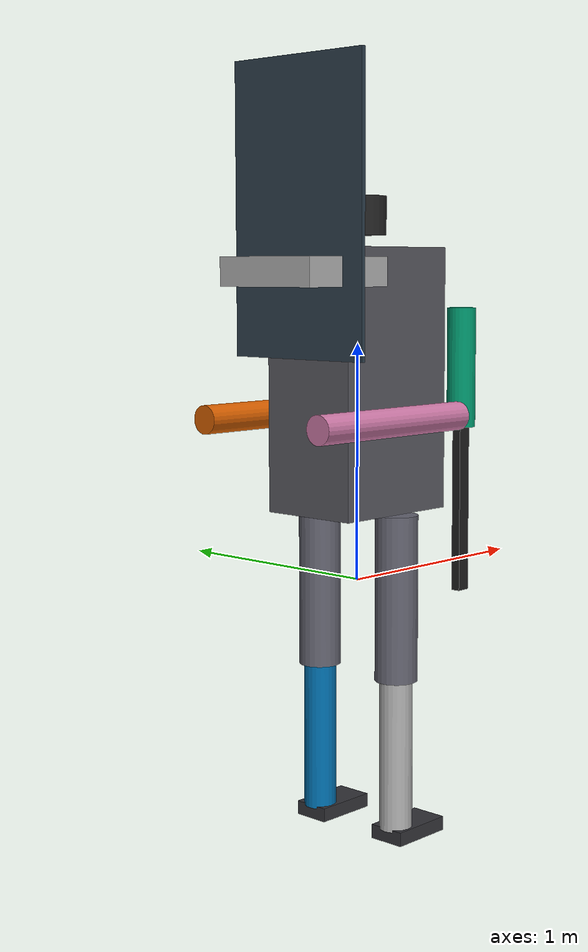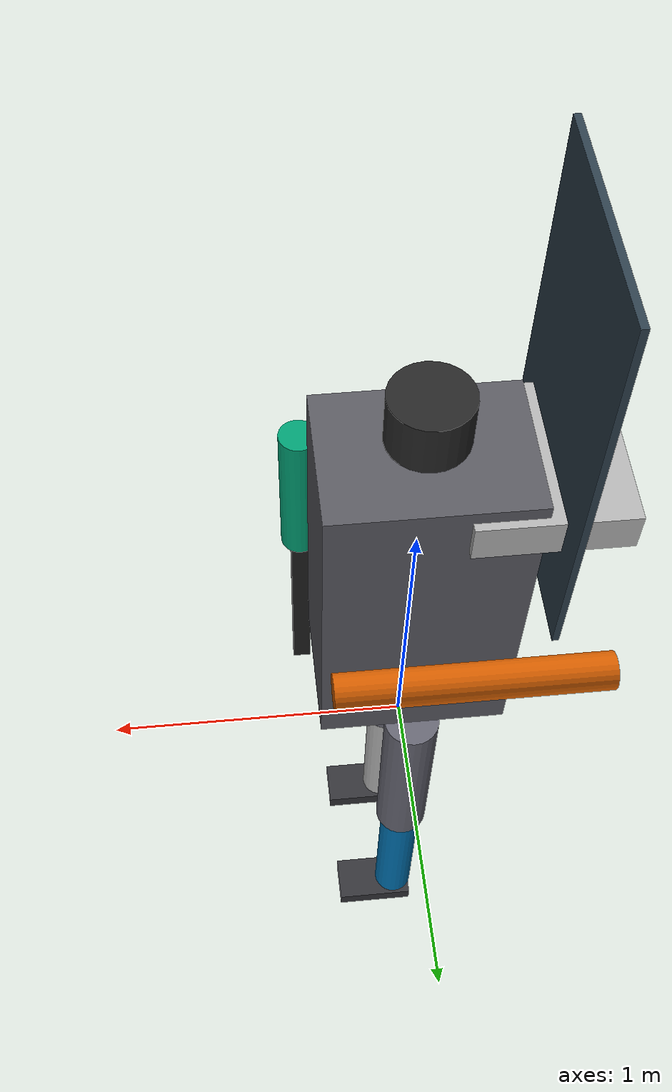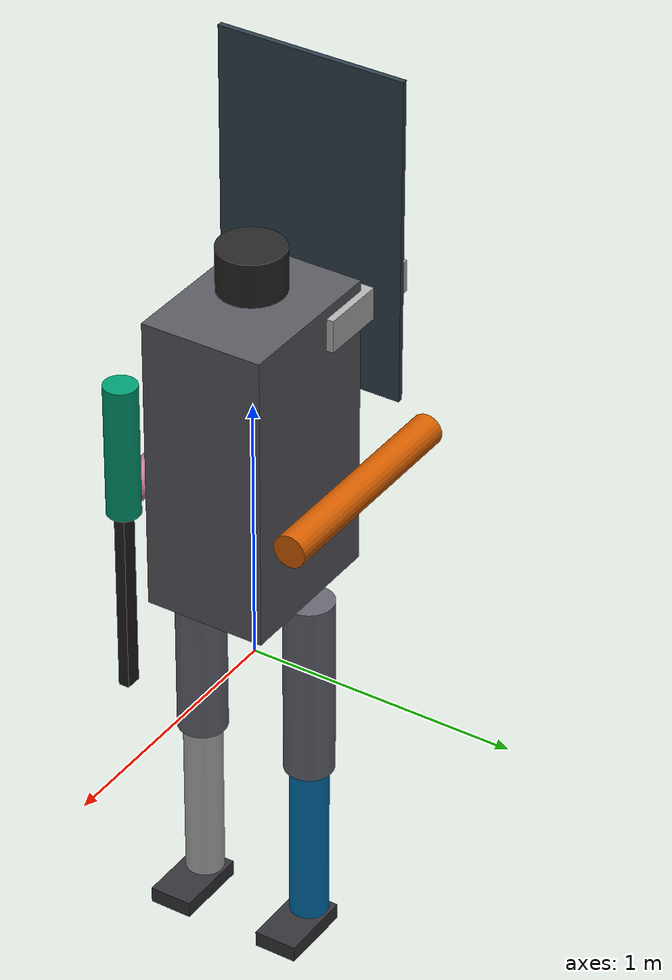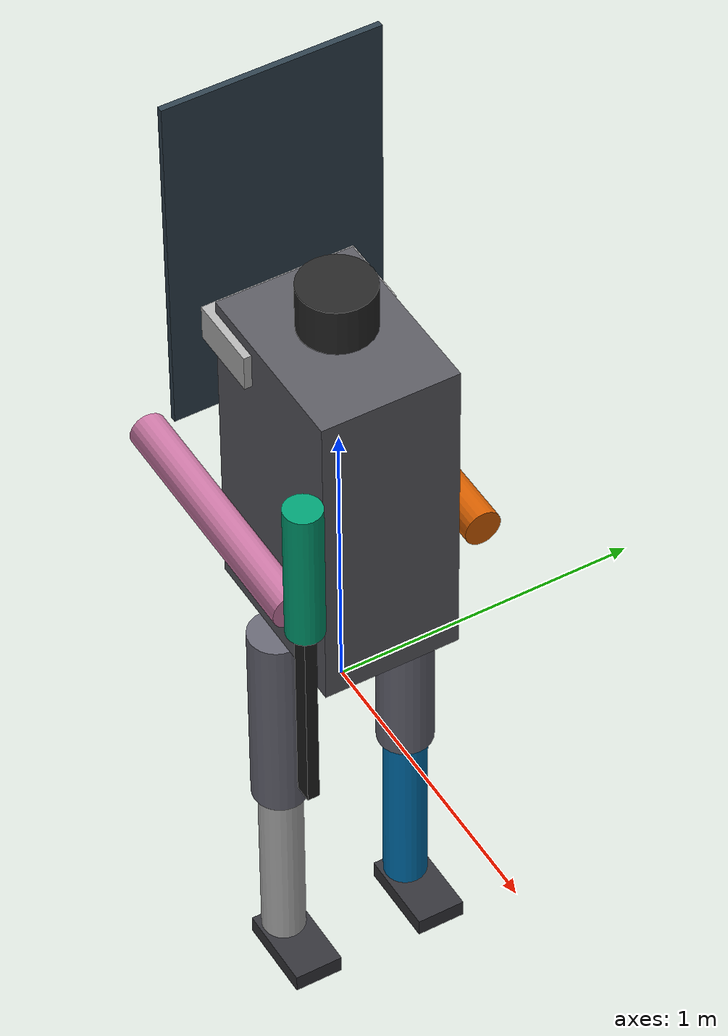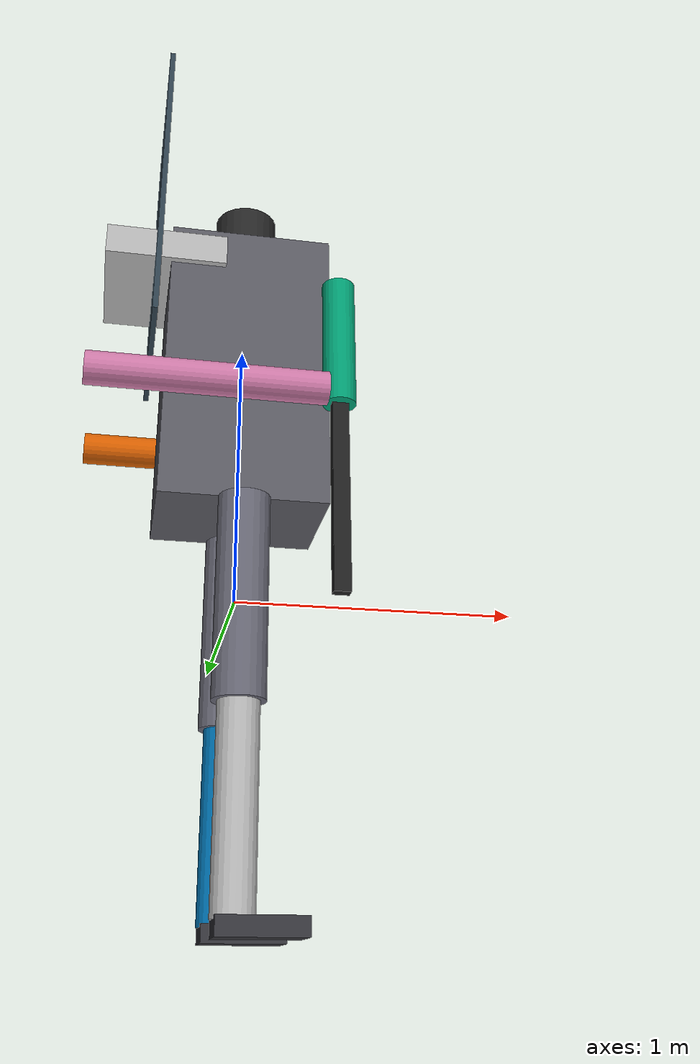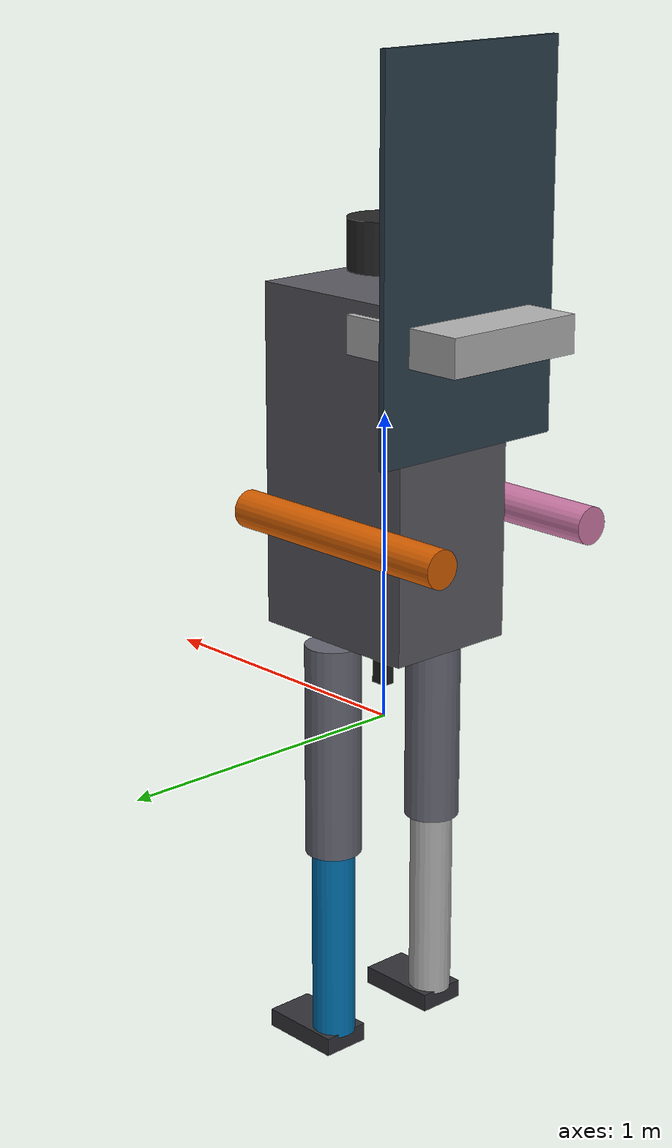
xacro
<?xml version="1.0"?>
<robot xmlns:xacro="http://www.ros.org/wiki/xacro" name="acsr">
  <xacro:property name="total_mass" value="450.0"/>
  <xacro:property name="battery_mass" value="110.0"/>
  <xacro:property name="shield_mass" value="18.0"/>

  <!-- Base / torso: 1.1m tall, ~0.6m wide, holds 110kg battery low -->
  <link name="base_link">
    <inertial>
      <origin xyz="0 0 0.85" rpy="0 0 0"/>
      <mass value="150.0"/>
      <inertia ixx="12.0" ixy="0.0" ixz="0.0" iyy="12.0" iyz="0.0" izz="6.0"/>
    </inertial>
    <visual>
      <origin xyz="0 0 0.85" rpy="0 0 0"/>
      <geometry><box size="0.6 0.45 1.1"/></geometry>
      <material name="torso_mat"><color rgba="0.35 0.35 0.38 1.0"/></material>
    </visual>
    <collision>
      <origin xyz="0 0 0.85" rpy="0 0 0"/>
      <geometry><box size="0.6 0.45 1.1"/></geometry>
    </collision>
  </link>

  <!-- Chest battery (low CoM) — fixed to base -->
  <link name="chest_battery">
    <inertial>
      <origin xyz="0.08 0 0.75" rpy="0 0 0"/>
      <mass value="${battery_mass}"/>
      <inertia ixx="4.5" ixy="0" ixz="0" iyy="4.5" iyz="0" izz="2.2"/>
    </inertial>
    <visual>
      <origin xyz="0.08 0 0.75" rpy="0 0 0"/>
      <geometry><box size="0.35 0.3 0.25"/></geometry>
      <material name="battery_mat"><color rgba="0.1 0.6 0.2 1.0"/></material>
    </visual>
  </link>
  <joint name="battery_fixed" type="fixed">
    <parent link="base_link"/><child link="chest_battery"/>
    <origin xyz="0 0 0" rpy="0 0 0"/>
  </joint>

  <!-- Sensor head: LiDAR + cameras — Jetson Orin mount -->
  <link name="sensor_head">
    <inertial>
      <origin xyz="0 0 0.08" rpy="0 0 0"/>
      <mass value="8.0"/>
      <inertia ixx="0.08" ixy="0" ixz="0" iyy="0.08" iyz="0" izz="0.08"/>
    </inertial>
    <visual>
      <origin xyz="0 0 0.08" rpy="0 0 0"/>
      <geometry><cylinder radius="0.12" length="0.16"/></geometry>
      <material name="head_mat"><color rgba="0.15 0.15 0.15 1.0"/></material>
    </visual>
  </link>
  <joint name="head_yaw" type="revolute">
    <parent link="base_link"/><child link="sensor_head"/>
    <origin xyz="0 0 1.45" rpy="0 0 0"/>
    <axis xyz="0 0 1"/>
    <limit lower="-1.57" upper="1.57" effort="30" velocity="3.0"/>
  </joint>

  <!-- Legs: bipedal hydraulic — simplified 3-DoF per leg -->
  <xacro:macro name="leg" params="prefix y">
    <link name="${prefix}_thigh">
      <inertial>
        <origin xyz="0 0 -0.35" rpy="0 0 0"/>
        <mass value="42.0"/>
        <inertia ixx="2.8" ixy="0" ixz="0" iyy="2.8" iyz="0" izz="0.9"/>
      </inertial>
      <visual>
        <origin xyz="0 0 -0.35" rpy="0 0 0"/>
        <geometry><cylinder radius="0.09" length="0.70"/></geometry>
        <material name="leg_mat"><color rgba="0.4 0.4 0.45 1.0"/></material>
      </visual>
      <collision>
        <origin xyz="0 0 -0.35" rpy="0 0 0"/>
        <geometry><cylinder radius="0.09" length="0.70"/></geometry>
      </collision>
    </link>
    <joint name="${prefix}_hip_pitch" type="revolute">
      <parent link="base_link"/><child link="${prefix}_thigh"/>
      <origin xyz="0 ${y} 0.30" rpy="0 0 0"/>
      <axis xyz="0 1 0"/>
      <limit lower="-0.8" upper="1.2" effort="900" velocity="2.0"/>
      <dynamics damping="25" friction="5"/>
    </joint>
    <link name="${prefix}_shin">
      <inertial>
        <origin xyz="0 0 -0.32" rpy="0 0 0"/>
        <mass value="28.0"/>
        <inertia ixx="1.4" ixy="0" ixz="0" iyy="1.4" iyz="0" izz="0.45"/>
      </inertial>
      <visual>
        <origin xyz="0 0 -0.32" rpy="0 0 0"/>
        <geometry><cylinder radius="0.07" length="0.64"/></geometry>
      </visual>
      <collision>
        <origin xyz="0 0 -0.32" rpy="0 0 0"/>
        <geometry><cylinder radius="0.07" length="0.64"/></geometry>
      </collision>
    </link>
    <joint name="${prefix}_knee" type="revolute">
      <parent link="${prefix}_thigh"/><child link="${prefix}_shin"/>
      <origin xyz="0 0 -0.70" rpy="0 0 0"/>
      <axis xyz="0 1 0"/>
      <limit lower="0" upper="2.2" effort="900" velocity="2.2"/>
      <dynamics damping="20" friction="5"/>
    </joint>
    <link name="${prefix}_foot">
      <inertial>
        <origin xyz="0.08 0 -0.02" rpy="0 0 0"/>
        <mass value="9.0"/>
        <inertia ixx="0.12" ixy="0" ixz="0" iyy="0.20" iyz="0" izz="0.18"/>
      </inertial>
      <visual>
        <origin xyz="0.08 0 -0.02" rpy="0 0 0"/>
        <geometry><box size="0.28 0.16 0.06"/></geometry>
        <material name="foot_mat"><color rgba="0.2 0.2 0.22 1.0"/></material>
      </visual>
      <collision>
        <origin xyz="0.08 0 -0.02" rpy="0 0 0"/>
        <geometry><box size="0.28 0.16 0.06"/></geometry>
      </collision>
    </link>
    <joint name="${prefix}_ankle" type="revolute">
      <parent link="${prefix}_shin"/><child link="${prefix}_foot"/>
      <origin xyz="0 0 -0.64" rpy="0 0 0"/>
      <axis xyz="0 1 0"/>
      <limit lower="-0.6" upper="0.6" effort="400" velocity="3.0"/>
    </joint>
  </xacro:macro>

  <xacro:leg prefix="left" y="0.22"/>
  <xacro:leg prefix="right" y="-0.22"/>

  <!-- Shield: 1.2x0.7m 18kg boron-carbide — pivot arm on shoulder -->
  <link name="shield">
    <inertial>
      <origin xyz="0 0 0.60" rpy="0 0 0"/>
      <mass value="${shield_mass}"/>
      <inertia ixx="2.1" ixy="0" ixz="0" iyy="0.9" iyz="0" izz="2.4"/>
    </inertial>
    <visual>
      <origin xyz="0 0 0.60" rpy="0 0 0"/>
      <geometry><box size="0.02 0.70 1.20"/></geometry>
      <material name="shield_mat"><color rgba="0.18 0.25 0.30 1.0"/></material>
    </visual>
    <collision>
      <origin xyz="0 0 0.60" rpy="0 0 0"/>
      <geometry><box size="0.02 0.70 1.20"/></geometry>
    </collision>
  </link>
  <joint name="shield_pivot" type="revolute">
    <parent link="base_link"/><child link="shield"/>
    <origin xyz="-0.35 0 0.95" rpy="0 0 0"/>
    <axis xyz="0 1 0"/>
    <!-- 0 = stowed on back, 1.57 = deployed forward (riot brace geometry) -->
    <limit lower="0" upper="1.70" effort="250" velocity="1.5"/>
    <dynamics damping="15" friction="2"/>
  </joint>

  <!-- Arms / weapons TF -->
  <link name="right_arm">
    <inertial><mass value="18.0"/><inertia ixx="0.6" ixy="0" ixz="0" iyy="0.6" iyz="0" izz="0.3"/><origin xyz="0 0 -0.25"/></inertial>
    <visual><origin xyz="0 0 -0.25"/><geometry><cylinder radius="0.06" length="0.50"/></geometry></visual>
  </link>
  <joint name="right_shoulder" type="revolute">
    <parent link="base_link"/><child link="right_arm"/>
    <origin xyz="0.32 -0.30 1.15" rpy="0 0 0"/>
    <axis xyz="0 1 0"/>
    <limit lower="-0.5" upper="1.8" effort="300" velocity="2.0"/>
  </joint>

  <link name="rifle">
    <inertial><mass value="4.2"/><inertia ixx="0.04" ixy="0" ixz="0" iyy="0.04" iyz="0" izz="0.02"/><origin xyz="0 0 0"/></inertial>
    <visual><origin xyz="0.35 0 0"/><geometry><box size="0.70 0.04 0.06"/></geometry><material name="rifle_mat"><color rgba="0.12 0.12 0.12 1.0"/></material></visual>
  </link>
  <joint name="rifle_fixed" type="fixed">
    <parent link="right_arm"/><child link="rifle"/>
    <origin xyz="0 0 -0.50" rpy="0 1.57 0"/>
  </joint>

  <!-- 40mm launcher underslung TF -->
  <link name="launcher"><inertial><mass value="1.8"/><inertia ixx="0.01" ixy="0" ixz="0" iyy="0.01" iyz="0" izz="0.01"/><origin xyz="0 0 0"/></inertial></link>
  <joint name="launcher_fixed" type="fixed"><parent link="rifle"/><child link="launcher"/><origin xyz="0.10 0 -0.04" rpy="0 0 0"/></joint>

  <!-- Missile pylons (Spike SR 4kg each, x2) -->
  <link name="missile_left"><inertial><mass value="4.0"/><inertia ixx="0.03" ixy="0" ixz="0" iyy="0.03" iyz="0" izz="0.02"/><origin xyz="0 0 0"/></inertial><visual><origin xyz="0 0 0"/><geometry><cylinder radius="0.06" length="0.85"/></geometry></visual></link>
  <joint name="missile_left_fixed" type="fixed"><parent link="base_link"/><child link="missile_left"/><origin xyz="-0.15 0.32 0.70" rpy="0 1.57 0"/></joint>
  <link name="missile_right"><inertial><mass value="4.0"/><inertia ixx="0.03" ixy="0" ixz="0" iyy="0.03" iyz="0" izz="0.02"/><origin xyz="0 0 0"/></inertial><visual><origin xyz="0 0 0"/><geometry><cylinder radius="0.06" length="0.85"/></geometry></visual></link>
  <joint name="missile_right_fixed" type="fixed"><parent link="base_link"/><child link="missile_right"/><origin xyz="-0.15 -0.32 0.70" rpy="0 1.57 0"/></joint>

  <!-- Drone bay (2x 6kg fold-flat fixed-wing) -->
  <link name="drone_bay"><inertial><mass value="12.0"/><inertia ixx="0.4" ixy="0" ixz="0" iyy="0.4" iyz="0" izz="0.2"/><origin xyz="0 0 0"/></inertial><visual><origin xyz="0 0 0"/><geometry><box size="0.45 0.50 0.12"/></geometry></visual></link>
  <joint name="drone_bay_fixed" type="fixed"><parent link="base_link"/><child link="drone_bay"/><origin xyz="-0.32 0 1.30" rpy="0 0 0"/></joint>

  <!-- Gazebo plugins (ros2_control + sensors) -->
  <gazebo>
    <plugin filename="libgz_ros2_control-system.so" name="gz_ros2_control">
      <parameters>config/ros2_controllers.yaml</parameters>
    </plugin>
  </gazebo>

  <!-- Sensor head: camera + lidar (gz sensors) -->
  <gazebo reference="sensor_head">
    <sensor name="head_camera" type="camera">
      <camera><image><width>1280</width><height>720</height></image><clip><near>0.1</near><far>80</far></clip></camera>
      <always_on>true</always_on><update_rate>30</update_rate>
      <topic>/camera/image_raw</topic>
      <gz:topic xmlns:gz="http://gazebosim.org/schema">/camera/image_raw</gz:topic>
    </sensor>
    <sensor name="head_lidar" type="gpu_lidar">
      <lidar><scan><horizontal><samples>1024</samples><min_angle>-1.5708</min_angle><max_angle>1.5708</max_angle></horizontal></scan><range><min>0.2</min><max>60</max></range></lidar>
      <always_on>true</always_on><update_rate>10</update_rate>
      <topic>/lidar/points</topic>
    </sensor>
  </gazebo>

  <gazebo reference="shield">
    <material>Gazebo/DarkGrey</material>
  </gazebo>
</robot>
